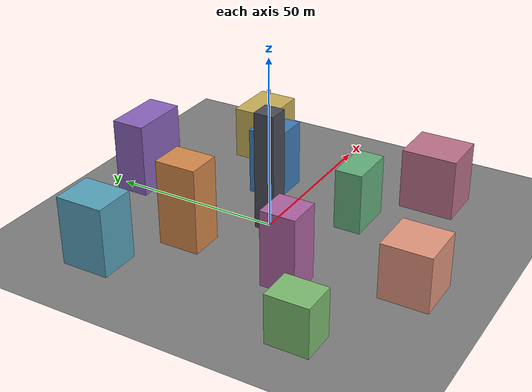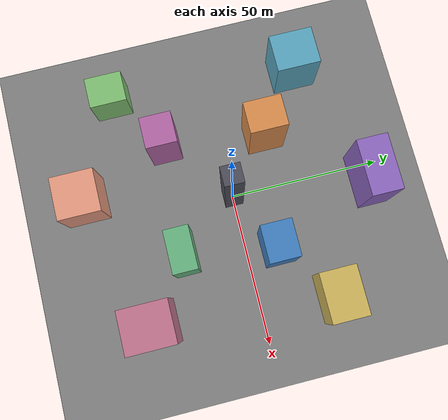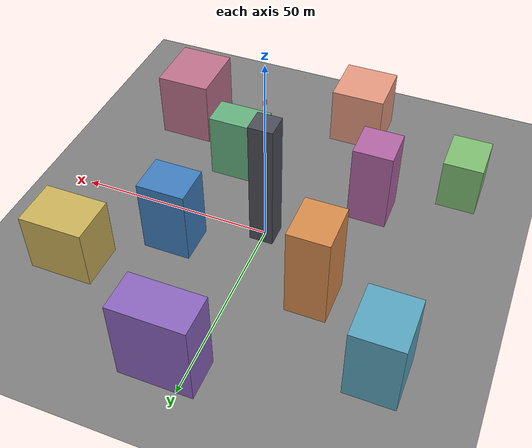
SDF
<?xml version="1.0" ?>
<!-- Scenario 4: Elevated Macro Cell Environment
     High transmitter above urban clutter
     Expected: 3GPP UMa model should perform best -->
<sdf version="1.8">
  <world name="scenario_elevated_macro">

    <physics name="1ms" type="ignored">
      <max_step_size>0.001</max_step_size>
      <real_time_factor>1.0</real_time_factor>
    </physics>

    <plugin filename="ignition-gazebo-physics-system"
            name="ignition::gazebo::systems::Physics"/>
    <plugin filename="ignition-gazebo-scene-broadcaster-system"
            name="ignition::gazebo::systems::SceneBroadcaster"/>
    <plugin filename="ignition-gazebo-user-commands-system"
            name="ignition::gazebo::systems::UserCommands"/>

    <plugin filename="libHeatmapPlugin.so"
            name="heatmap_plugin::HeatmapPlugin">
      <grid_w>128</grid_w>
      <grid_h>128</grid_h>
      <cell_size>0.75</cell_size>
      <frequency_hz>3500000000</frequency_hz>
      <tx_dbm>43.0</tx_dbm>
      <tx_height>35.0</tx_height>
      <rx_height>1.5</rx_height>
      <tx_gain_dbi>15.0</tx_gain_dbi>
      <rx_gain_dbi>0.0</rx_gain_dbi>
      <gnb_pose>0 0 35 0 0 0</gnb_pose>
      <propagation_model>3gpp_uma</propagation_model>
      <wall_loss_db>20.0</wall_loss_db>
      <reflection_coeff>0.6</reflection_coeff>
      <include_shadowing>false</include_shadowing>
      <max_reflections>2</max_reflections>
    </plugin>

    <light type="directional" name="sun">
      <cast_shadows>true</cast_shadows>
      <pose>0 0 60 0 0 0</pose>
      <diffuse>0.8 0.8 0.8 1</diffuse>
      <specular>0.2 0.2 0.2 1</specular>
      <direction>-0.5 0.1 -0.9</direction>
    </light>

    <!-- Ground plane - Grey -->
    <model name="ground_plane">
      <static>true</static>
      <link name="link">
        <collision name="collision">
          <geometry><plane><normal>0 0 1</normal><size>250 250</size></plane></geometry>
        </collision>
        <visual name="visual">
          <geometry><plane><normal>0 0 1</normal><size>250 250</size></plane></geometry>
          <material>
            <ambient>0.5 0.5 0.5 1</ambient>
            <diffuse>0.5 0.5 0.5 1</diffuse>
            <specular>0.1 0.1 0.1 1</specular>
            <emissive>0 0 0 1</emissive>
          </material>
        </visual>
      </link>
    </model>

    <!-- Tall central tower with gNB - Dark charcoal -->
    <model name="gnb_tower">
      <static>true</static>
      <pose>0 0 17.5 0 0 0</pose>
      <link name="link">
        <collision name="collision"><geometry><box><size>6 6 35</size></box></geometry></collision>
        <visual name="visual">
          <geometry><box><size>6 6 35</size></box></geometry>
          <material>
            <ambient>0.3 0.3 0.35 1</ambient>
            <diffuse>0.3 0.3 0.35 1</diffuse>
            <specular>0.1 0.1 0.1 1</specular>
            <emissive>0 0 0 1</emissive>
          </material>
        </visual>
      </link>
    </model>

    <model name="gnb_antenna_mast">
      <static>true</static>
      <pose>0 0 38 0 0 0</pose>
      <link name="link">
        <visual name="mast">
          <geometry><cylinder><radius>0.15</radius><length>6</length></cylinder></geometry>
          <material>
            <ambient>0.4 0.4 0.4 1</ambient>
            <diffuse>0.4 0.4 0.4 1</diffuse>
            <specular>0.1 0.1 0.1 1</specular>
            <emissive>0 0 0 1</emissive>
          </material>
        </visual>
        <visual name="antenna1">
          <pose>0 0.3 2.5 0 0 0</pose>
          <geometry><box><size>0.5 0.15 1.2</size></box></geometry>
          <material>
            <ambient>0.9 0.1 0.1 1</ambient>
            <diffuse>0.9 0.1 0.1 1</diffuse>
            <specular>0.2 0.2 0.2 1</specular>
            <emissive>0 0 0 1</emissive>
          </material>
        </visual>
        <visual name="antenna2">
          <pose>0 -0.3 2.5 0 0 0</pose>
          <geometry><box><size>0.5 0.15 1.2</size></box></geometry>
          <material>
            <ambient>0.9 0.1 0.1 1</ambient>
            <diffuse>0.9 0.1 0.1 1</diffuse>
            <specular>0.2 0.2 0.2 1</specular>
            <emissive>0 0 0 1</emissive>
          </material>
        </visual>
      </link>
    </model>

    <!-- Ring 1 - close buildings -->
    <model name="bldg_r1_1">
      <static>true</static>
      <pose>20 10 10 0 0 0</pose>
      <link name="link">
        <collision name="collision"><geometry><box><size>12 10 20</size></box></geometry></collision>
        <visual name="visual">
          <geometry><box><size>12 10 20</size></box></geometry>
          <material>
            <ambient>0.25 0.5 0.75 1</ambient>
            <diffuse>0.25 0.5 0.75 1</diffuse>
            <specular>0.1 0.1 0.1 1</specular>
            <emissive>0 0 0 1</emissive>
          </material>
        </visual>
      </link>
    </model>

    <model name="bldg_r1_2">
      <static>true</static>
      <pose>-18 15 12.5 0 0 0</pose>
      <link name="link">
        <collision name="collision"><geometry><box><size>10 12 25</size></box></geometry></collision>
        <visual name="visual">
          <geometry><box><size>10 12 25</size></box></geometry>
          <material>
            <ambient>0.85 0.55 0.3 1</ambient>
            <diffuse>0.85 0.55 0.3 1</diffuse>
            <specular>0.1 0.1 0.1 1</specular>
            <emissive>0 0 0 1</emissive>
          </material>
        </visual>
      </link>
    </model>

    <model name="bldg_r1_3">
      <static>true</static>
      <pose>15 -20 9 0 0 0</pose>
      <link name="link">
        <collision name="collision"><geometry><box><size>14 8 18</size></box></geometry></collision>
        <visual name="visual">
          <geometry><box><size>14 8 18</size></box></geometry>
          <material>
            <ambient>0.4 0.7 0.5 1</ambient>
            <diffuse>0.4 0.7 0.5 1</diffuse>
            <specular>0.1 0.1 0.1 1</specular>
            <emissive>0 0 0 1</emissive>
          </material>
        </visual>
      </link>
    </model>

    <model name="bldg_r1_4">
      <static>true</static>
      <pose>-22 -18 11 0 0 0</pose>
      <link name="link">
        <collision name="collision"><geometry><box><size>10 10 22</size></box></geometry></collision>
        <visual name="visual">
          <geometry><box><size>10 10 22</size></box></geometry>
          <material>
            <ambient>0.7 0.4 0.65 1</ambient>
            <diffuse>0.7 0.4 0.65 1</diffuse>
            <specular>0.1 0.1 0.1 1</specular>
            <emissive>0 0 0 1</emissive>
          </material>
        </visual>
      </link>
    </model>

    <!-- Ring 2 - medium distance -->
    <model name="bldg_r2_1">
      <static>true</static>
      <pose>40 25 8 0 0 0</pose>
      <link name="link">
        <collision name="collision"><geometry><box><size>16 12 16</size></box></geometry></collision>
        <visual name="visual">
          <geometry><box><size>16 12 16</size></box></geometry>
          <material>
            <ambient>0.8 0.7 0.35 1</ambient>
            <diffuse>0.8 0.7 0.35 1</diffuse>
            <specular>0.1 0.1 0.1 1</specular>
            <emissive>0 0 0 1</emissive>
          </material>
        </visual>
      </link>
    </model>

    <model name="bldg_r2_2">
      <static>true</static>
      <pose>-38 30 10 0 0 0</pose>
      <link name="link">
        <collision name="collision"><geometry><box><size>12 14 20</size></box></geometry></collision>
        <visual name="visual">
          <geometry><box><size>12 14 20</size></box></geometry>
          <material>
            <ambient>0.35 0.65 0.75 1</ambient>
            <diffuse>0.35 0.65 0.75 1</diffuse>
            <specular>0.1 0.1 0.1 1</specular>
            <emissive>0 0 0 1</emissive>
          </material>
        </visual>
      </link>
    </model>

    <model name="bldg_r2_3">
      <static>true</static>
      <pose>35 -35 9 0 0 0</pose>
      <link name="link">
        <collision name="collision"><geometry><box><size>14 16 18</size></box></geometry></collision>
        <visual name="visual">
          <geometry><box><size>14 16 18</size></box></geometry>
          <material>
            <ambient>0.75 0.45 0.55 1</ambient>
            <diffuse>0.75 0.45 0.55 1</diffuse>
            <specular>0.1 0.1 0.1 1</specular>
            <emissive>0 0 0 1</emissive>
          </material>
        </visual>
      </link>
    </model>

    <model name="bldg_r2_4">
      <static>true</static>
      <pose>-42 -32 7 0 0 0</pose>
      <link name="link">
        <collision name="collision"><geometry><box><size>10 12 14</size></box></geometry></collision>
        <visual name="visual">
          <geometry><box><size>10 12 14</size></box></geometry>
          <material>
            <ambient>0.5 0.75 0.45 1</ambient>
            <diffuse>0.5 0.75 0.45 1</diffuse>
            <specular>0.1 0.1 0.1 1</specular>
            <emissive>0 0 0 1</emissive>
          </material>
        </visual>
      </link>
    </model>

    <model name="bldg_r2_5">
      <static>true</static>
      <pose>5 45 11 0 0 0</pose>
      <link name="link">
        <collision name="collision"><geometry><box><size>18 10 22</size></box></geometry></collision>
        <visual name="visual">
          <geometry><box><size>18 10 22</size></box></geometry>
          <material>
            <ambient>0.55 0.4 0.75 1</ambient>
            <diffuse>0.55 0.4 0.75 1</diffuse>
            <specular>0.1 0.1 0.1 1</specular>
            <emissive>0 0 0 1</emissive>
          </material>
        </visual>
      </link>
    </model>

    <model name="bldg_r2_6">
      <static>true</static>
      <pose>-10 -48 8 0 0 0</pose>
      <link name="link">
        <collision name="collision"><geometry><box><size>14 14 16</size></box></geometry></collision>
        <visual name="visual">
          <geometry><box><size>14 14 16</size></box></geometry>
          <material>
            <ambient>0.9 0.6 0.5 1</ambient>
            <diffuse>0.9 0.6 0.5 1</diffuse>
            <specular>0.1 0.1 0.1 1</specular>
            <emissive>0 0 0 1</emissive>
          </material>
        </visual>
      </link>
    </model>

  </world>
</sdf>
